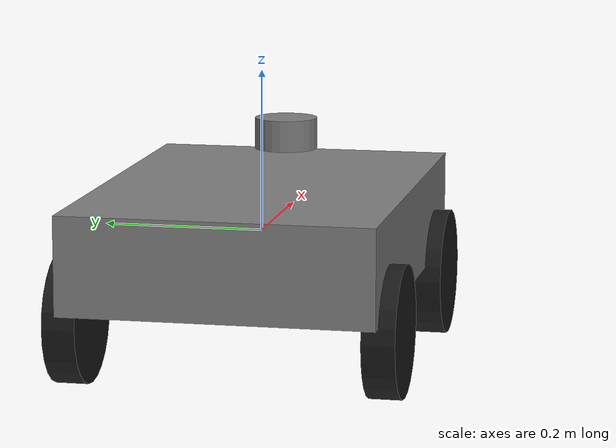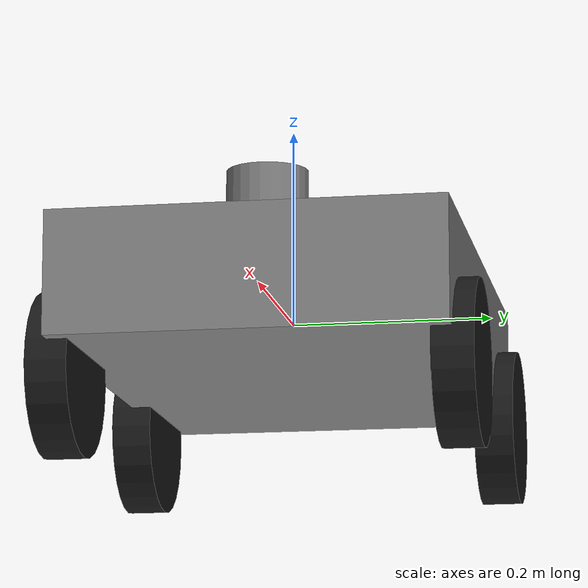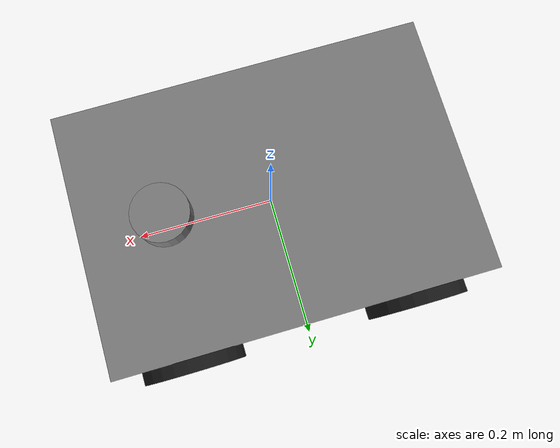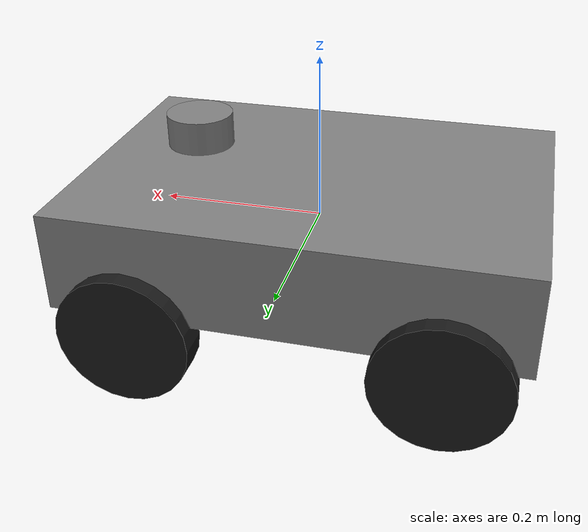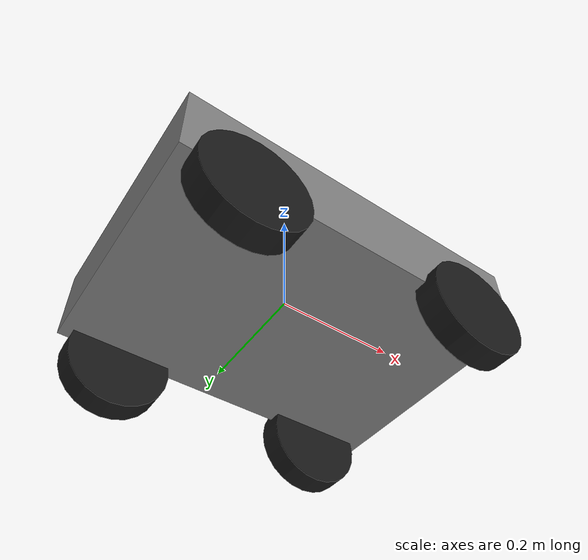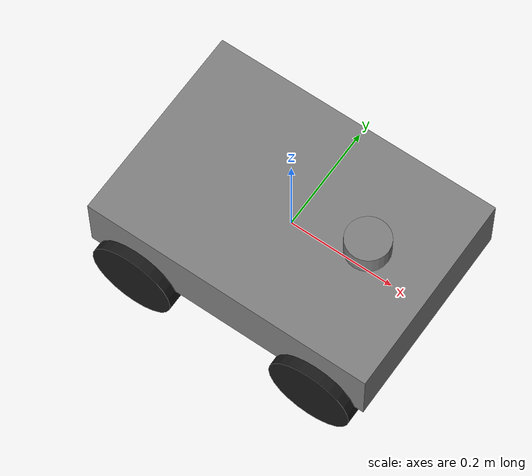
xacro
<?xml version="1.0"?>
<robot name="four_wheel_lidar_bot" xmlns:xacro="http://www.ros.org/wiki/xacro">

  <xacro:property name="base_length" value="0.55"/>
  <xacro:property name="base_width"  value="0.38"/>
  <xacro:property name="base_height" value="0.12"/>

  <xacro:property name="wheel_radius" value="0.08"/>
  <xacro:property name="wheel_width"  value="0.04"/>

  <material name="gray">
    <color rgba="0.5 0.5 0.5 1.0"/>
  </material>

  <material name="black">
    <color rgba="0.1 0.1 0.1 1.0"/>
  </material>

  <link name="base_link">
    <visual>
      <origin xyz="0 0 0" rpy="0 0 0"/>
      <geometry>
        <box size="${base_length} ${base_width} ${base_height}"/>
      </geometry>
      <material name="gray"/>
    </visual>

    <collision>
      <origin xyz="0 0 0" rpy="0 0 0"/>
      <geometry>
        <box size="${base_length} ${base_width} ${base_height}"/>
      </geometry>
    </collision>

    <inertial>
      <mass value="12.0"/>
      <origin xyz="0 0 0"/>
      <inertia ixx="0.30" ixy="0.0" ixz="0.0"
               iyy="0.50" iyz="0.0"
               izz="0.60"/>
    </inertial>
  </link>

  <link name="front_left_wheel">
    <visual>
      <origin xyz="0 0 0" rpy="1.5708 0 0"/>
      <geometry>
        <cylinder radius="${wheel_radius}" length="${wheel_width}"/>
      </geometry>
      <material name="black"/>
    </visual>

    <collision>
      <origin xyz="0 0 0" rpy="1.5708 0 0"/>
      <geometry>
        <cylinder radius="${wheel_radius}" length="${wheel_width}"/>
      </geometry>
    </collision>

    <inertial>
      <mass value="1.0"/>
      <origin xyz="0 0 0"/>
      <inertia ixx="0.01" ixy="0.0" ixz="0.0"
               iyy="0.01" iyz="0.0"
               izz="0.01"/>
    </inertial>
  </link>

  <link name="rear_left_wheel">
    <visual>
      <origin xyz="0 0 0" rpy="1.5708 0 0"/>
      <geometry>
        <cylinder radius="${wheel_radius}" length="${wheel_width}"/>
      </geometry>
      <material name="black"/>
    </visual>

    <collision>
      <origin xyz="0 0 0" rpy="1.5708 0 0"/>
      <geometry>
        <cylinder radius="${wheel_radius}" length="${wheel_width}"/>
      </geometry>
    </collision>

    <inertial>
      <mass value="1.0"/>
      <origin xyz="0 0 0"/>
      <inertia ixx="0.01" ixy="0.0" ixz="0.0"
               iyy="0.01" iyz="0.0"
               izz="0.01"/>
    </inertial>
  </link>

  <link name="front_right_wheel">
    <visual>
      <origin xyz="0 0 0" rpy="1.5708 0 0"/>
      <geometry>
        <cylinder radius="${wheel_radius}" length="${wheel_width}"/>
      </geometry>
      <material name="black"/>
    </visual>

    <collision>
      <origin xyz="0 0 0" rpy="1.5708 0 0"/>
      <geometry>
        <cylinder radius="${wheel_radius}" length="${wheel_width}"/>
      </geometry>
    </collision>

    <inertial>
      <mass value="1.0"/>
      <origin xyz="0 0 0"/>
      <inertia ixx="0.01" ixy="0.0" ixz="0.0"
               iyy="0.01" iyz="0.0"
               izz="0.01"/>
    </inertial>
  </link>

  <link name="rear_right_wheel">
    <visual>
      <origin xyz="0 0 0" rpy="1.5708 0 0"/>
      <geometry>
        <cylinder radius="${wheel_radius}" length="${wheel_width}"/>
      </geometry>
      <material name="black"/>
    </visual>

    <collision>
      <origin xyz="0 0 0" rpy="1.5708 0 0"/>
      <geometry>
        <cylinder radius="${wheel_radius}" length="${wheel_width}"/>
      </geometry>
    </collision>

    <inertial>
      <mass value="1.0"/>
      <origin xyz="0 0 0"/>
      <inertia ixx="0.01" ixy="0.0" ixz="0.0"
               iyy="0.01" iyz="0.0"
               izz="0.01"/>
    </inertial>
  </link>

  <joint name="front_left_wheel_joint" type="continuous">
    <parent link="base_link"/>
    <child link="front_left_wheel"/>
    <origin xyz="0.18 0.19 -0.08" rpy="0 0 0"/>
    <axis xyz="0 1 0"/>
  </joint>

  <joint name="rear_left_wheel_joint" type="continuous">
    <parent link="base_link"/>
    <child link="rear_left_wheel"/>
    <origin xyz="-0.18 0.19 -0.08" rpy="0 0 0"/>
    <axis xyz="0 1 0"/>
  </joint>

  <joint name="front_right_wheel_joint" type="continuous">
    <parent link="base_link"/>
    <child link="front_right_wheel"/>
    <origin xyz="0.18 -0.19 -0.08" rpy="0 0 0"/>
    <axis xyz="0 1 0"/>
  </joint>

  <joint name="rear_right_wheel_joint" type="continuous">
    <parent link="base_link"/>
    <child link="rear_right_wheel"/>
    <origin xyz="-0.18 -0.19 -0.08" rpy="0 0 0"/>
    <axis xyz="0 1 0"/>
  </joint>

  <gazebo reference="front_left_wheel">
    <mu1>2.0</mu1>
    <mu2>1.5</mu2>
    <kp>1000000.0</kp>
    <kd>100.0</kd>
    <minDepth>0.001</minDepth>
    <maxVel>0.1</maxVel>
  </gazebo>

  <gazebo reference="rear_left_wheel">
    <mu1>2.0</mu1>
    <mu2>1.5</mu2>
    <kp>1000000.0</kp>
    <kd>100.0</kd>
    <minDepth>0.001</minDepth>
    <maxVel>0.1</maxVel>
  </gazebo>

  <gazebo reference="front_right_wheel">
    <mu1>2.0</mu1>
    <mu2>1.5</mu2>
    <kp>1000000.0</kp>
    <kd>100.0</kd>
    <minDepth>0.001</minDepth>
    <maxVel>0.1</maxVel>
  </gazebo>

  <gazebo reference="rear_right_wheel">
    <mu1>2.0</mu1>
    <mu2>1.5</mu2>
    <kp>1000000.0</kp>
    <kd>100.0</kd>
    <minDepth>0.001</minDepth>
    <maxVel>0.1</maxVel>
  </gazebo>

  <link name="lidar_link">
    <visual>
      <origin xyz="0 0 0" rpy="0 0 0"/>
      <geometry>
        <cylinder radius="0.04" length="0.04"/>
      </geometry>
      <material name="gray"/>
    </visual>

    <collision>
      <origin xyz="0 0 0" rpy="0 0 0"/>
      <geometry>
        <cylinder radius="0.04" length="0.04"/>
      </geometry>
    </collision>

    <inertial>
      <mass value="0.2"/>
      <origin xyz="0 0 0"/>
      <inertia ixx="0.001" ixy="0.0" ixz="0.0"
               iyy="0.001" iyz="0.0"
               izz="0.001"/>
    </inertial>
  </link>

  <joint name="lidar_joint" type="fixed">
    <parent link="base_link"/>
    <child link="lidar_link"/>
    <origin xyz="0.15 0 0.10" rpy="0 0 0"/>
  </joint>

  <gazebo reference="lidar_link">
    <sensor name="lidar_sensor" type="gpu_lidar">
      <topic>scan</topic>
      <frame_id>lidar_link</frame_id>
      <update_rate>10</update_rate>
      <always_on>true</always_on>
      <visualize>true</visualize>

      <lidar>
        <scan>
          <horizontal>
            <samples>720</samples>
            <resolution>1</resolution>
            <min_angle>-3.14159</min_angle>
            <max_angle>3.14159</max_angle>
          </horizontal>
        </scan>

        <range>
          <min>0.12</min>
          <max>12.0</max>
          <resolution>0.01</resolution>
        </range>
      </lidar>
    </sensor>
  </gazebo>

  <gazebo>
    <plugin filename="gz-sim-diff-drive-system" name="gz::sim::systems::DiffDrive">
      <left_joint>front_left_wheel_joint</left_joint>
      <left_joint>rear_left_wheel_joint</left_joint>

      <right_joint>front_right_wheel_joint</right_joint>
      <right_joint>rear_right_wheel_joint</right_joint>

      <wheel_separation>0.38</wheel_separation>
      <wheel_radius>0.08</wheel_radius>

      <topic>cmd_vel</topic>

      <tf_topic>/tf</tf_topic>
      <odom_topic>odom</odom_topic>

      <frame_id>odom</frame_id>
      <child_frame_id>base_link</child_frame_id>
    </plugin>
  </gazebo>

  <gazebo>
    <plugin filename="gz-sim-pose-publisher-system" name="gz::sim::systems::PosePublisher">
      <publish_link_pose>false</publish_link_pose>
      <publish_visual_pose>false</publish_visual_pose>
      <publish_collision_pose>false</publish_collision_pose>
      <publish_sensor_pose>false</publish_sensor_pose>
      <publish_nested_model_pose>false</publish_nested_model_pose>
      <publish_model_pose>true</publish_model_pose>
      <use_pose_vector_msg>false</use_pose_vector_msg>
    </plugin>
  </gazebo>

</robot>
